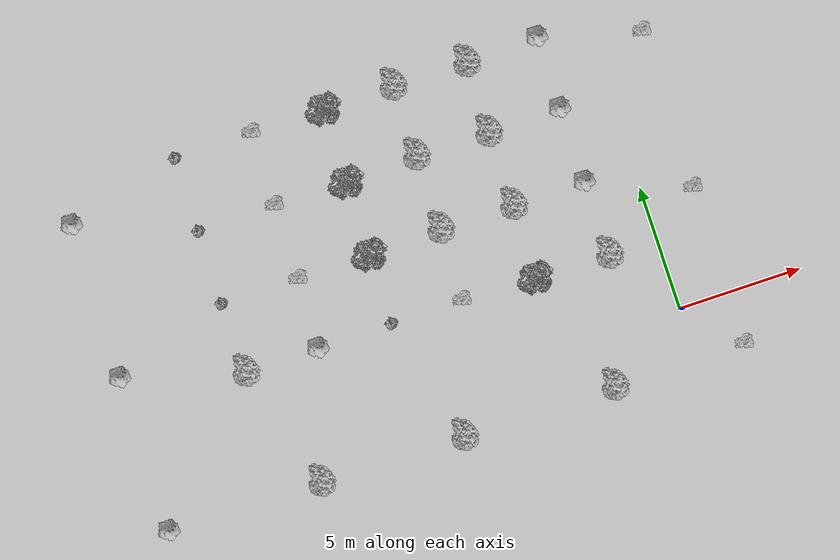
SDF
<sdf version="1.6">
 <world name="default">
  <model name="ground_plane">
   <static>1</static>
   <link name="link">
    <collision name="collision">
     <geometry><plane><normal>0 0 1</normal><size>100 100</size></plane></geometry>
     <surface>
      <contact><collide_bitmask>65535</collide_bitmask></contact>
      <friction><ode><mu>100</mu><mu2>50</mu2></ode></friction>
     </surface>
    </collision>
    <visual name="visual">
     <cast_shadows>0</cast_shadows>
     <geometry><plane><normal>0 0 1</normal><size>100 100</size></plane></geometry>
     <material>
      <script><uri>file://media/materials/scripts/gazebo.material</uri><name>Gazebo/Grey</name></script>
     </material>
    </visual>
   </link>
  </model>
  <model name="Tree 1">
   <static>1</static>
   <pose>-2.01215 2.95768 0 1.57079 -0 0</pose>
   <link name="link">
    <collision name="collision">
     <geometry><mesh><scale>1.2 1.2 1.2</scale><uri>model://tree_1/meshes/tree_1.obj</uri></mesh></geometry>
    </collision>
    <visual name="visual">
     <geometry><mesh><scale>1.2 1.2 1.2</scale><uri>model://tree_1/meshes/tree_1.obj</uri></mesh></geometry>
    </visual>
   </link>
  </model>
  <model name="Tree 2 0.7">
   <static>1</static>
   <pose>-5.02314 2.95927 0 1.57079 -0 0</pose>
   <link name="link">
    <collision name="collision">
     <geometry><mesh><scale>0.7 0.7 0.7</scale><uri>model://tree_2/meshes/tree_2.obj</uri></mesh></geometry>
    </collision>
    <visual name="visual">
     <geometry><mesh><scale>0.7 0.7 0.7</scale><uri>model://tree_2/meshes/tree_2.obj</uri></mesh></geometry>
    </visual>
   </link>
  </model>
  <model name="Tree 3">
   <static>1</static>
   <pose>-8.02364 3.01482 0 1.57079 -0 0</pose>
   <link name="link">
    <collision name="collision">
     <geometry><mesh><scale>0.5 0.5 0.5</scale><uri>model://tree_3/meshes/tree_3.obj</uri></mesh></geometry>
    </collision>
    <visual name="visual">
     <geometry><mesh><scale>0.5 0.5 0.5</scale><uri>model://tree_3/meshes/tree_3.obj</uri></mesh></geometry>
    </visual>
   </link>
  </model>
  <model name="Tree 4">
   <static>1</static>
   <pose>-10.9676 3.0058 0 1.57079 -0 0</pose>
   <link name="link">
    <collision name="collision">
     <geometry><mesh><scale>0.3 0.3 0.3</scale><uri>model://tree_4/meshes/tree_4.obj</uri></mesh></geometry>
    </collision>
    <visual name="visual">
     <geometry><mesh><scale>0.3 0.3 0.3</scale><uri>model://tree_4/meshes/tree_4.obj</uri></mesh></geometry>
    </visual>
   </link>
  </model>
  <model name="Tree 5">
   <static>1</static>
   <pose>-14.0033 3.00808 0 1.57079 -0 0</pose>
   <link name="link">
    <collision name="collision">
     <geometry><mesh><scale>1 1 1</scale><uri>model://tree_5/meshes/tree.obj</uri></mesh></geometry>
    </collision>
    <visual name="visual">
     <geometry><mesh><scale>1 1 1</scale><uri>model://tree_5/meshes/tree.obj</uri></mesh></geometry>
    </visual>
   </link>
  </model>
  <model name="Tree 1_0">
   <static>1</static>
   <pose>-17.0388 3.01881 0 1.57079 -0 0</pose>
   <link name="link">
    <collision name="collision">
     <geometry><mesh><scale>1.2 1.2 1.2</scale><uri>model://tree_1/meshes/tree_1.obj</uri></mesh></geometry>
    </collision>
    <visual name="visual">
     <geometry><mesh><scale>1.2 1.2 1.2</scale><uri>model://tree_1/meshes/tree_1.obj</uri></mesh></geometry>
    </visual>
   </link>
  </model>
  <model name="Tree 5_clone">
   <static>1</static>
   <pose>-2.00064 5.95836 0 1.57079 -0 0</pose>
   <link name="link">
    <collision name="collision">
     <geometry><mesh><scale>1 1 1</scale><uri>model://tree_5/meshes/tree.obj</uri></mesh></geometry>
    </collision>
    <visual name="visual">
     <geometry><mesh><scale>1 1 1</scale><uri>model://tree_5/meshes/tree.obj</uri></mesh></geometry>
    </visual>
   </link>
  </model>
  <model name="Tree 5_clone_clone">
   <static>1</static>
   <pose>-2.02325 9.00706 0 1.57079 -0 0</pose>
   <link name="link">
    <collision name="collision">
     <geometry><mesh><scale>1 1 1</scale><uri>model://tree_5/meshes/tree.obj</uri></mesh></geometry>
    </collision>
    <visual name="visual">
     <geometry><mesh><scale>1 1 1</scale><uri>model://tree_5/meshes/tree.obj</uri></mesh></geometry>
    </visual>
   </link>
  </model>
  <model name="Tree 5_clone_clone_clone">
   <static>1</static>
   <pose>-1.99409 11.9455 0 1.57079 -0 0</pose>
   <link name="link">
    <collision name="collision">
     <geometry><mesh><scale>1 1 1</scale><uri>model://tree_5/meshes/tree.obj</uri></mesh></geometry>
    </collision>
    <visual name="visual">
     <geometry><mesh><scale>1 1 1</scale><uri>model://tree_5/meshes/tree.obj</uri></mesh></geometry>
    </visual>
   </link>
  </model>
  <model name="Tree 1_0_clone">
   <static>1</static>
   <pose>-4.99569 5.96548 0 1.57079 -0 0</pose>
   <link name="link">
    <collision name="collision">
     <geometry><mesh><scale>1.2 1.2 1.2</scale><uri>model://tree_1/meshes/tree_1.obj</uri></mesh></geometry>
    </collision>
    <visual name="visual">
     <geometry><mesh><scale>1.2 1.2 1.2</scale><uri>model://tree_1/meshes/tree_1.obj</uri></mesh></geometry>
    </visual>
   </link>
  </model>
  <model name="Tree 1_0_clone_clone">
   <static>1</static>
   <pose>-5.02835 8.99179 0 1.57079 -0 0</pose>
   <link name="link">
    <collision name="collision">
     <geometry><mesh><scale>1.2 1.2 1.2</scale><uri>model://tree_1/meshes/tree_1.obj</uri></mesh></geometry>
    </collision>
    <visual name="visual">
     <geometry><mesh><scale>1.2 1.2 1.2</scale><uri>model://tree_1/meshes/tree_1.obj</uri></mesh></geometry>
    </visual>
   </link>
  </model>
  <model name="Tree 1_0_clone_clone_clone">
   <static>1</static>
   <pose>-4.99336 11.8714 0 1.57079 -0 0</pose>
   <link name="link">
    <collision name="collision">
     <geometry><mesh><scale>1.2 1.2 1.2</scale><uri>model://tree_1/meshes/tree_1.obj</uri></mesh></geometry>
    </collision>
    <visual name="visual">
     <geometry><mesh><scale>1.2 1.2 1.2</scale><uri>model://tree_1/meshes/tree_1.obj</uri></mesh></geometry>
    </visual>
   </link>
  </model>
  <model name="Tree 1_0_clone_clone_0">
   <static>1</static>
   <pose>-8.00598 5.97499 0 1.57079 -0 0</pose>
   <link name="link">
    <collision name="collision">
     <geometry><mesh><scale>1.2 1.2 1.2</scale><uri>model://tree_1/meshes/tree_1.obj</uri></mesh></geometry>
    </collision>
    <visual name="visual">
     <geometry><mesh><scale>1.2 1.2 1.2</scale><uri>model://tree_1/meshes/tree_1.obj</uri></mesh></geometry>
    </visual>
   </link>
  </model>
  <model name="Tree 1_0_clone_clone_0_clone">
   <static>1</static>
   <pose>-8.01643 9.00574 0 1.57079 -0 0</pose>
   <link name="link">
    <collision name="collision">
     <geometry><mesh><scale>1.2 1.2 1.2</scale><uri>model://tree_1/meshes/tree_1.obj</uri></mesh></geometry>
    </collision>
    <visual name="visual">
     <geometry><mesh><scale>1.2 1.2 1.2</scale><uri>model://tree_1/meshes/tree_1.obj</uri></mesh></geometry>
    </visual>
   </link>
  </model>
  <model name="Tree 1_0_clone_clone_0_clone_clone">
   <static>1</static>
   <pose>-8.03008 11.9049 0 1.57079 -0 0</pose>
   <link name="link">
    <collision name="collision">
     <geometry><mesh><scale>1.2 1.2 1.2</scale><uri>model://tree_1/meshes/tree_1.obj</uri></mesh></geometry>
    </collision>
    <visual name="visual">
     <geometry><mesh><scale>1.2 1.2 1.2</scale><uri>model://tree_1/meshes/tree_1.obj</uri></mesh></geometry>
    </visual>
   </link>
  </model>
  <model name="Tree 2 0.7_clone_1">
   <static>1</static>
   <pose>-10.9276 5.85251 0 1.57079 -0 0</pose>
   <link name="link">
    <collision name="collision">
     <geometry><mesh><scale>0.7 0.7 0.7</scale><uri>model://tree_2/meshes/tree_2.obj</uri></mesh></geometry>
    </collision>
    <visual name="visual">
     <geometry><mesh><scale>0.7 0.7 0.7</scale><uri>model://tree_2/meshes/tree_2.obj</uri></mesh></geometry>
    </visual>
   </link>
  </model>
  <model name="Tree 2 0.7_clone_1_clone">
   <static>1</static>
   <pose>-10.9037 8.83174 0 1.57079 -0 0</pose>
   <link name="link">
    <collision name="collision">
     <geometry><mesh><scale>0.7 0.7 0.7</scale><uri>model://tree_2/meshes/tree_2.obj</uri></mesh></geometry>
    </collision>
    <visual name="visual">
     <geometry><mesh><scale>0.7 0.7 0.7</scale><uri>model://tree_2/meshes/tree_2.obj</uri></mesh></geometry>
    </visual>
   </link>
  </model>
  <model name="Tree 2 0.7_clone_1_clone_0">
   <static>1</static>
   <pose>-10.8599 11.8283 0 1.57079 -0 0</pose>
   <link name="link">
    <collision name="collision">
     <geometry><mesh><scale>0.7 0.7 0.7</scale><uri>model://tree_2/meshes/tree_2.obj</uri></mesh></geometry>
    </collision>
    <visual name="visual">
     <geometry><mesh><scale>0.7 0.7 0.7</scale><uri>model://tree_2/meshes/tree_2.obj</uri></mesh></geometry>
    </visual>
   </link>
  </model>
  <model name="Tree 3_clone_1">
   <static>1</static>
   <pose>-13.8944 5.82789 0 1.57079 -0 0</pose>
   <link name="link">
    <collision name="collision">
     <geometry><mesh><scale>0.5 0.5 0.5</scale><uri>model://tree_3/meshes/tree_3.obj</uri></mesh></geometry>
    </collision>
    <visual name="visual">
     <geometry><mesh><scale>0.5 0.5 0.5</scale><uri>model://tree_3/meshes/tree_3.obj</uri></mesh></geometry>
    </visual>
   </link>
  </model>
  <model name="Tree 3_clone_1_clone">
   <static>1</static>
   <pose>-13.8704 8.87116 0 1.57079 -0 0</pose>
   <link name="link">
    <collision name="collision">
     <geometry><mesh><scale>0.5 0.5 0.5</scale><uri>model://tree_3/meshes/tree_3.obj</uri></mesh></geometry>
    </collision>
    <visual name="visual">
     <geometry><mesh><scale>0.5 0.5 0.5</scale><uri>model://tree_3/meshes/tree_3.obj</uri></mesh></geometry>
    </visual>
   </link>
  </model>
  <model name="Tree 3_clone_1_clone_clone">
   <static>1</static>
   <pose>-13.8547 11.8739 0 1.57079 -0 0</pose>
   <link name="link">
    <collision name="collision">
     <geometry><mesh><scale>0.5 0.5 0.5</scale><uri>model://tree_3/meshes/tree_3.obj</uri></mesh></geometry>
    </collision>
    <visual name="visual">
     <geometry><mesh><scale>0.5 0.5 0.5</scale><uri>model://tree_3/meshes/tree_3.obj</uri></mesh></geometry>
    </visual>
   </link>
  </model>
  <model name="Tree 4_clone_2">
   <static>1</static>
   <pose>-17.0724 5.8331 0 1.57079 -0 0</pose>
   <link name="link">
    <collision name="collision">
     <geometry><mesh><scale>0.3 0.3 0.3</scale><uri>model://tree_4/meshes/tree_4.obj</uri></mesh></geometry>
    </collision>
    <visual name="visual">
     <geometry><mesh><scale>0.3 0.3 0.3</scale><uri>model://tree_4/meshes/tree_4.obj</uri></mesh></geometry>
    </visual>
   </link>
  </model>
  <model name="Tree 4_clone_2_clone">
   <static>1</static>
   <pose>-17.0474 8.8197 0 1.57079 -0 0</pose>
   <link name="link">
    <collision name="collision">
     <geometry><mesh><scale>0.3 0.3 0.3</scale><uri>model://tree_4/meshes/tree_4.obj</uri></mesh></geometry>
    </collision>
    <visual name="visual">
     <geometry><mesh><scale>0.3 0.3 0.3</scale><uri>model://tree_4/meshes/tree_4.obj</uri></mesh></geometry>
    </visual>
   </link>
  </model>
  <model name="Tree 4_clone_2_clone_clone">
   <static>1</static>
   <pose>-17.0265 11.829 0 1.57079 -0 0</pose>
   <link name="link">
    <collision name="collision">
     <geometry><mesh><scale>0.3 0.3 0.3</scale><uri>model://tree_4/meshes/tree_4.obj</uri></mesh></geometry>
    </collision>
    <visual name="visual">
     <geometry><mesh><scale>0.3 0.3 0.3</scale><uri>model://tree_4/meshes/tree_4.obj</uri></mesh></geometry>
    </visual>
   </link>
  </model>
  <model name="Tree 3_clone_2">
   <static>1</static>
   <pose>2.00636 -2.06222 0 1.57079 -0 0</pose>
   <link name="link">
    <collision name="collision">
     <geometry><mesh><scale>0.5 0.5 0.5</scale><uri>model://tree_3/meshes/tree_3.obj</uri></mesh></geometry>
    </collision>
    <visual name="visual">
     <geometry><mesh><scale>0.5 0.5 0.5</scale><uri>model://tree_3/meshes/tree_3.obj</uri></mesh></geometry>
    </visual>
   </link>
  </model>
  <model name="Tree 3_clone_clone_0_clone_0">
   <static>1</static>
   <pose>2.0037 4.41037 0 1.57079 -0 0</pose>
   <link name="link">
    <collision name="collision">
     <geometry><mesh><scale>0.5 0.5 0.5</scale><uri>model://tree_3/meshes/tree_3.obj</uri></mesh></geometry>
    </collision>
    <visual name="visual">
     <geometry><mesh><scale>0.5 0.5 0.5</scale><uri>model://tree_3/meshes/tree_3.obj</uri></mesh></geometry>
    </visual>
   </link>
  </model>
  <model name="Tree 3_clone_clone_0_clone_0_clone">
   <static>1</static>
   <pose>2.01024 10.8685 0 1.57079 -0 0</pose>
   <link name="link">
    <collision name="collision">
     <geometry><mesh><scale>0.5 0.5 0.5</scale><uri>model://tree_3/meshes/tree_3.obj</uri></mesh></geometry>
    </collision>
    <visual name="visual">
     <geometry><mesh><scale>0.5 0.5 0.5</scale><uri>model://tree_3/meshes/tree_3.obj</uri></mesh></geometry>
    </visual>
   </link>
  </model>
  <model name="Tree 5_clone_4_clone_clone">
   <static>1</static>
   <pose>-21.7042 10.6404 0 1.57079 -0 0</pose>
   <link name="link">
    <collision name="collision">
     <geometry><mesh><scale>1 1 1</scale><uri>model://tree_5/meshes/tree.obj</uri></mesh></geometry>
    </collision>
    <visual name="visual">
     <geometry><mesh><scale>1 1 1</scale><uri>model://tree_5/meshes/tree.obj</uri></mesh></geometry>
    </visual>
   </link>
  </model>
  <model name="Tree 5_clone_4_clone_clone_clone">
   <static>1</static>
   <pose>-21.7784 4.33899 0 1.57079 -0 0</pose>
   <link name="link">
    <collision name="collision">
     <geometry><mesh><scale>1 1 1</scale><uri>model://tree_5/meshes/tree.obj</uri></mesh></geometry>
    </collision>
    <visual name="visual">
     <geometry><mesh><scale>1 1 1</scale><uri>model://tree_5/meshes/tree.obj</uri></mesh></geometry>
    </visual>
   </link>
  </model>
  <model name="Tree 5_clone_4_clone_clone_clone_clone_clone">
   <static>1</static>
   <pose>-21.8176 -1.98169 0 1.57079 -0 0</pose>
   <link name="link">
    <collision name="collision">
     <geometry><mesh><scale>1 1 1</scale><uri>model://tree_5/meshes/tree.obj</uri></mesh></geometry>
    </collision>
    <visual name="visual">
     <geometry><mesh><scale>1 1 1</scale><uri>model://tree_5/meshes/tree.obj</uri></mesh></geometry>
    </visual>
   </link>
  </model>
  <model name="Tree 1_0_clone_2">
   <static>1</static>
   <pose>-15.5561 -2.01752 0 1.57079 -0 0</pose>
   <link name="link">
    <collision name="collision">
     <geometry><mesh><scale>1.2 1.2 1.2</scale><uri>model://tree_1/meshes/tree_1.obj</uri></mesh></geometry>
    </collision>
    <visual name="visual">
     <geometry><mesh><scale>1.2 1.2 1.2</scale><uri>model://tree_1/meshes/tree_1.obj</uri></mesh></geometry>
    </visual>
   </link>
  </model>
  <model name="Tree 1_0_clone_2_clone">
   <static>1</static>
   <pose>-9.65429 -2.06553 0 1.57079 -0 0</pose>
   <link name="link">
    <collision name="collision">
     <geometry><mesh><scale>1.2 1.2 1.2</scale><uri>model://tree_1/meshes/tree_1.obj</uri></mesh></geometry>
    </collision>
    <visual name="visual">
     <geometry><mesh><scale>1.2 1.2 1.2</scale><uri>model://tree_1/meshes/tree_1.obj</uri></mesh></geometry>
    </visual>
   </link>
  </model>
  <model name="Tree 1_0_clone_2_clone_clone">
   <static>1</static>
   <pose>-3.41845 -2.03584 0 1.57079 -0 0</pose>
   <link name="link">
    <collision name="collision">
     <geometry><mesh><scale>1.2 1.2 1.2</scale><uri>model://tree_1/meshes/tree_1.obj</uri></mesh></geometry>
    </collision>
    <visual name="visual">
     <geometry><mesh><scale>1.2 1.2 1.2</scale><uri>model://tree_1/meshes/tree_1.obj</uri></mesh></geometry>
    </visual>
   </link>
  </model>
 </world>
</sdf>
